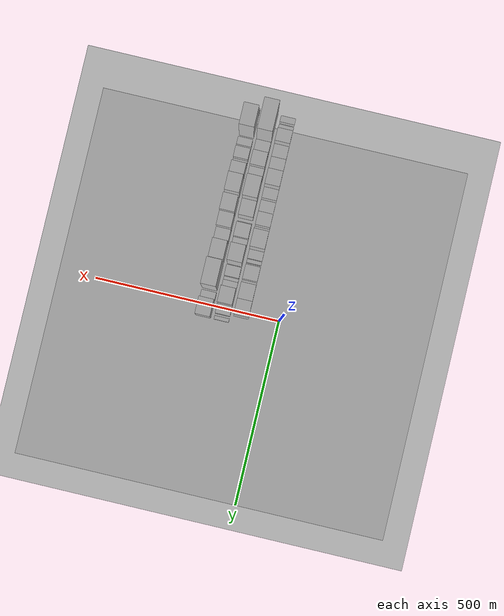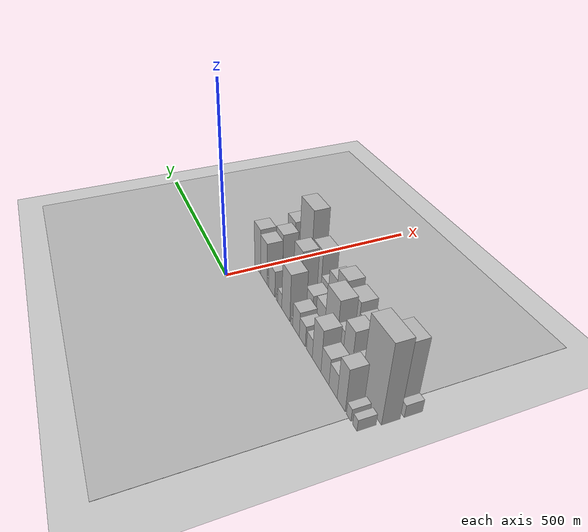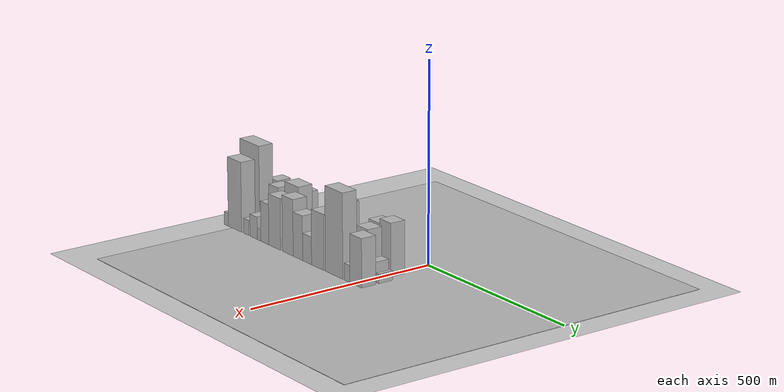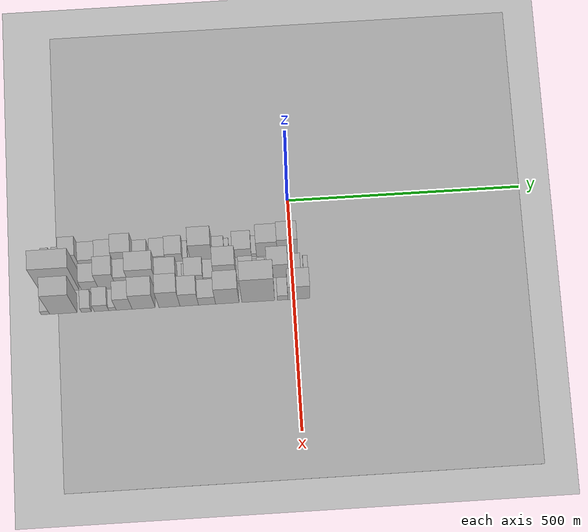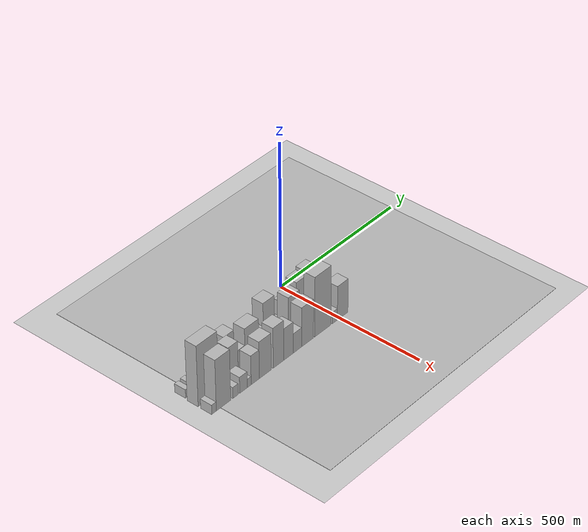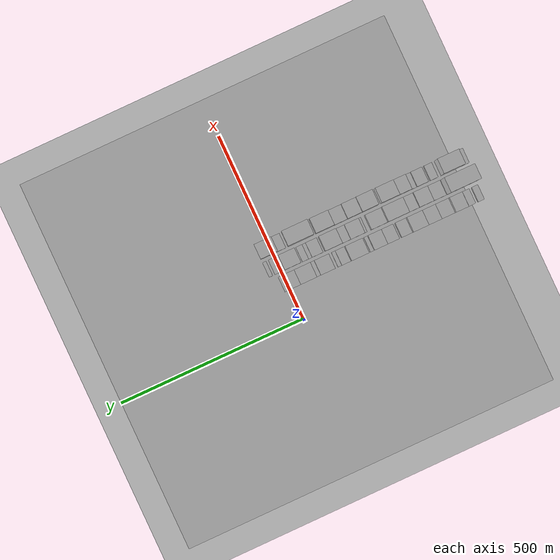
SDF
<sdf version="1.6">
 <world name="default">
  <include><name>ground_plane_1</name><uri>model://HANNAS_ground_plane</uri></include>
  <include>
   <name>ground_plane_2</name>
   <uri>model://HANNAS_ground_plane</uri>
   <pose>100 0 0  0 0 0</pose>
  </include>
  <model name="building_1">
   <static>1</static>
   <pose>100.0000 -523.5699 0 0.000000 0.000000 0.000000</pose>
   <link name="link">
    <pose>0 0 15.00 0 0 0</pose>
    <collision name="collision"><geometry><box><size>40.0000 16.8602 30.0000</size></box></geometry></collision>
    <visual name="visual">
     <cast_shadows>0</cast_shadows>
     <geometry><box><size>40.0000 16.8602 30.0000</size></box></geometry>
     <material>
      <script>
       <uri>model://HANNAS_wall/materials/scripts</uri>
       <uri>model://HANNAS_wall/materials/textures</uri>
       <name>vrc/HANNAS_wall</name>
      </script>
     </material>
    </visual>
   </link>
  </model>
  <model name="building_2">
   <static>1</static>
   <pose>100.0000 -498.9160 0 0.000000 0.000000 0.000000</pose>
   <link name="link">
    <pose>0 0 16.50 0 0 0</pose>
    <collision name="collision"><geometry><box><size>40.0000 18.4478 33.0000</size></box></geometry></collision>
    <visual name="visual">
     <cast_shadows>0</cast_shadows>
     <geometry><box><size>40.0000 18.4478 33.0000</size></box></geometry>
     <material>
      <script>
       <uri>model://HANNAS_wall/materials/scripts</uri>
       <uri>model://HANNAS_wall/materials/textures</uri>
       <name>vrc/HANNAS_wall</name>
      </script>
     </material>
    </visual>
   </link>
  </model>
  <model name="building_3">
   <static>1</static>
   <pose>100.0000 -467.4793 0 0.000000 0.000000 0.000000</pose>
   <link name="link">
    <pose>0 0 57.00 0 0 0</pose>
    <collision name="collision"><geometry><box><size>40.0000 34.4256 114.0000</size></box></geometry></collision>
    <visual name="visual">
     <cast_shadows>0</cast_shadows>
     <geometry><box><size>40.0000 34.4256 114.0000</size></box></geometry>
     <material>
      <script>
       <uri>model://HANNAS_wall/materials/scripts</uri>
       <uri>model://HANNAS_wall/materials/textures</uri>
       <name>vrc/HANNAS_wall</name>
      </script>
     </material>
    </visual>
   </link>
  </model>
  <model name="building_4">
   <static>1</static>
   <pose>100.0000 -432.1780 0 0.000000 0.000000 0.000000</pose>
   <link name="link">
    <pose>0 0 31.50 0 0 0</pose>
    <collision name="collision"><geometry><box><size>40.0000 36.1769 63.0000</size></box></geometry></collision>
    <visual name="visual">
     <cast_shadows>0</cast_shadows>
     <geometry><box><size>40.0000 36.1769 63.0000</size></box></geometry>
     <material>
      <script>
       <uri>model://HANNAS_wall/materials/scripts</uri>
       <uri>model://HANNAS_wall/materials/textures</uri>
       <name>vrc/HANNAS_wall</name>
      </script>
     </material>
    </visual>
   </link>
  </model>
  <model name="building_5">
   <static>1</static>
   <pose>100.0000 -395.4459 0 0.000000 0.000000 0.000000</pose>
   <link name="link">
    <pose>0 0 36.00 0 0 0</pose>
    <collision name="collision"><geometry><box><size>40.0000 37.2872 72.0000</size></box></geometry></collision>
    <visual name="visual">
     <cast_shadows>0</cast_shadows>
     <geometry><box><size>40.0000 37.2872 72.0000</size></box></geometry>
     <material>
      <script>
       <uri>model://HANNAS_wall/materials/scripts</uri>
       <uri>model://HANNAS_wall/materials/textures</uri>
       <name>vrc/HANNAS_wall</name>
      </script>
     </material>
    </visual>
   </link>
  </model>
  <model name="building_6">
   <static>1</static>
   <pose>100.0000 -355.8213 0 0.000000 0.000000 0.000000</pose>
   <link name="link">
    <pose>0 0 57.00 0 0 0</pose>
    <collision name="collision"><geometry><box><size>40.0000 41.9619 114.0000</size></box></geometry></collision>
    <visual name="visual">
     <cast_shadows>0</cast_shadows>
     <geometry><box><size>40.0000 41.9619 114.0000</size></box></geometry>
     <material>
      <script>
       <uri>model://HANNAS_wall/materials/scripts</uri>
       <uri>model://HANNAS_wall/materials/textures</uri>
       <name>vrc/HANNAS_wall</name>
      </script>
     </material>
    </visual>
   </link>
  </model>
  <model name="building_7">
   <static>1</static>
   <pose>100.0000 -319.9900 0 0.000000 0.000000 0.000000</pose>
   <link name="link">
    <pose>0 0 25.50 0 0 0</pose>
    <collision name="collision"><geometry><box><size>40.0000 29.7007 51.0000</size></box></geometry></collision>
    <visual name="visual">
     <cast_shadows>0</cast_shadows>
     <geometry><box><size>40.0000 29.7007 51.0000</size></box></geometry>
     <material>
      <script>
       <uri>model://HANNAS_wall/materials/scripts</uri>
       <uri>model://HANNAS_wall/materials/textures</uri>
       <name>vrc/HANNAS_wall</name>
      </script>
     </material>
    </visual>
   </link>
  </model>
  <model name="building_8">
   <static>1</static>
   <pose>100.0000 -283.0301 0 0.000000 0.000000 0.000000</pose>
   <link name="link">
    <pose>0 0 28.50 0 0 0</pose>
    <collision name="collision"><geometry><box><size>40.0000 32.2191 57.0000</size></box></geometry></collision>
    <visual name="visual">
     <cast_shadows>0</cast_shadows>
     <geometry><box><size>40.0000 32.2191 57.0000</size></box></geometry>
     <material>
      <script>
       <uri>model://HANNAS_wall/materials/scripts</uri>
       <uri>model://HANNAS_wall/materials/textures</uri>
       <name>vrc/HANNAS_wall</name>
      </script>
     </material>
    </visual>
   </link>
  </model>
  <model name="building_9">
   <static>1</static>
   <pose>100.0000 -248.7241 0 0.000000 0.000000 0.000000</pose>
   <link name="link">
    <pose>0 0 34.50 0 0 0</pose>
    <collision name="collision"><geometry><box><size>40.0000 36.3929 69.0000</size></box></geometry></collision>
    <visual name="visual">
     <cast_shadows>0</cast_shadows>
     <geometry><box><size>40.0000 36.3929 69.0000</size></box></geometry>
     <material>
      <script>
       <uri>model://HANNAS_wall/materials/scripts</uri>
       <uri>model://HANNAS_wall/materials/textures</uri>
       <name>vrc/HANNAS_wall</name>
      </script>
     </material>
    </visual>
   </link>
  </model>
  <model name="building_10">
   <static>1</static>
   <pose>100.0000 -225.4781 0 0.000000 0.000000 0.000000</pose>
   <link name="link">
    <pose>0 0 10.50 0 0 0</pose>
    <collision name="collision"><geometry><box><size>40.0000 10.0991 21.0000</size></box></geometry></collision>
    <visual name="visual">
     <cast_shadows>0</cast_shadows>
     <geometry><box><size>40.0000 10.0991 21.0000</size></box></geometry>
     <material>
      <script>
       <uri>model://HANNAS_wall/materials/scripts</uri>
       <uri>model://HANNAS_wall/materials/textures</uri>
       <name>vrc/HANNAS_wall</name>
      </script>
     </material>
    </visual>
   </link>
  </model>
  <model name="building_11">
   <static>1</static>
   <pose>100.0000 -190.6155 0 0.000000 0.000000 0.000000</pose>
   <link name="link">
    <pose>0 0 66.00 0 0 0</pose>
    <collision name="collision"><geometry><box><size>40.0000 47.6261 132.0000</size></box></geometry></collision>
    <visual name="visual">
     <cast_shadows>0</cast_shadows>
     <geometry><box><size>40.0000 47.6261 132.0000</size></box></geometry>
     <material>
      <script>
       <uri>model://HANNAS_wall/materials/scripts</uri>
       <uri>model://HANNAS_wall/materials/textures</uri>
       <name>vrc/HANNAS_wall</name>
      </script>
     </material>
    </visual>
   </link>
  </model>
  <model name="building_12">
   <static>1</static>
   <pose>100.0000 -154.3334 0 0.000000 0.000000 0.000000</pose>
   <link name="link">
    <pose>0 0 21.00 0 0 0</pose>
    <collision name="collision"><geometry><box><size>40.0000 24.9380 42.0000</size></box></geometry></collision>
    <visual name="visual">
     <cast_shadows>0</cast_shadows>
     <geometry><box><size>40.0000 24.9380 42.0000</size></box></geometry>
     <material>
      <script>
       <uri>model://HANNAS_wall/materials/scripts</uri>
       <uri>model://HANNAS_wall/materials/textures</uri>
       <name>vrc/HANNAS_wall</name>
      </script>
     </material>
    </visual>
   </link>
  </model>
  <model name="building_13">
   <static>1</static>
   <pose>100.0000 -136.8258 0 0.000000 0.000000 0.000000</pose>
   <link name="link">
    <pose>0 0 10.50 0 0 0</pose>
    <collision name="collision"><geometry><box><size>40.0000 10.0771 21.0000</size></box></geometry></collision>
    <visual name="visual">
     <cast_shadows>0</cast_shadows>
     <geometry><box><size>40.0000 10.0771 21.0000</size></box></geometry>
     <material>
      <script>
       <uri>model://HANNAS_wall/materials/scripts</uri>
       <uri>model://HANNAS_wall/materials/textures</uri>
       <name>vrc/HANNAS_wall</name>
      </script>
     </material>
    </visual>
   </link>
  </model>
  <model name="building_14">
   <static>1</static>
   <pose>100.0000 -104.0365 0 0.000000 0.000000 0.000000</pose>
   <link name="link">
    <pose>0 0 37.50 0 0 0</pose>
    <collision name="collision"><geometry><box><size>40.0000 39.5016 75.0000</size></box></geometry></collision>
    <visual name="visual">
     <cast_shadows>0</cast_shadows>
     <geometry><box><size>40.0000 39.5016 75.0000</size></box></geometry>
     <material>
      <script>
       <uri>model://HANNAS_wall/materials/scripts</uri>
       <uri>model://HANNAS_wall/materials/textures</uri>
       <name>vrc/HANNAS_wall</name>
      </script>
     </material>
    </visual>
   </link>
  </model>
  <model name="building_15">
   <static>1</static>
   <pose>100.0000 -78.7657 0 0.000000 0.000000 0.000000</pose>
   <link name="link">
    <pose>0 0 13.50 0 0 0</pose>
    <collision name="collision"><geometry><box><size>40.0000 11.0400 27.0000</size></box></geometry></collision>
    <visual name="visual">
     <cast_shadows>0</cast_shadows>
     <geometry><box><size>40.0000 11.0400 27.0000</size></box></geometry>
     <material>
      <script>
       <uri>model://HANNAS_wall/materials/scripts</uri>
       <uri>model://HANNAS_wall/materials/textures</uri>
       <name>vrc/HANNAS_wall</name>
      </script>
     </material>
    </visual>
   </link>
  </model>
  <model name="building_16">
   <static>1</static>
   <pose>100.0000 -51.2539 0 0.000000 0.000000 0.000000</pose>
   <link name="link">
    <pose>0 0 60.00 0 0 0</pose>
    <collision name="collision"><geometry><box><size>40.0000 43.9836 120.0000</size></box></geometry></collision>
    <visual name="visual">
     <cast_shadows>0</cast_shadows>
     <geometry><box><size>40.0000 43.9836 120.0000</size></box></geometry>
     <material>
      <script>
       <uri>model://HANNAS_wall/materials/scripts</uri>
       <uri>model://HANNAS_wall/materials/textures</uri>
       <name>vrc/HANNAS_wall</name>
      </script>
     </material>
    </visual>
   </link>
  </model>
  <model name="building_17">
   <static>1</static>
   <pose>100.0000 -7.7850 0 0.000000 0.000000 0.000000</pose>
   <link name="link">
    <pose>0 0 66.00 0 0 0</pose>
    <collision name="collision"><geometry><box><size>40.0000 42.9540 132.0000</size></box></geometry></collision>
    <visual name="visual">
     <cast_shadows>0</cast_shadows>
     <geometry><box><size>40.0000 42.9540 132.0000</size></box></geometry>
     <material>
      <script>
       <uri>model://HANNAS_wall/materials/scripts</uri>
       <uri>model://HANNAS_wall/materials/textures</uri>
       <name>vrc/HANNAS_wall</name>
      </script>
     </material>
    </visual>
   </link>
  </model>
  <model name="building_34">
   <static>1</static>
   <pose>149.0000 -495.1231 0 0.000000 0.000000 0.000000</pose>
   <link name="link">
    <pose>0 0 105.00 0 0 0</pose>
    <collision name="collision"><geometry><box><size>40.0000 81.7537 210.0000</size></box></geometry></collision>
    <visual name="visual">
     <cast_shadows>0</cast_shadows>
     <geometry><box><size>40.0000 81.7537 210.0000</size></box></geometry>
     <material>
      <script>
       <uri>model://HANNAS_wall/materials/scripts</uri>
       <uri>model://HANNAS_wall/materials/textures</uri>
       <name>vrc/HANNAS_wall</name>
      </script>
     </material>
    </visual>
   </link>
  </model>
  <model name="building_35">
   <static>1</static>
   <pose>149.0000 -431.0517 0 0.000000 0.000000 0.000000</pose>
   <link name="link">
    <pose>0 0 36.00 0 0 0</pose>
    <collision name="collision"><geometry><box><size>40.0000 36.3891 72.0000</size></box></geometry></collision>
    <visual name="visual">
     <cast_shadows>0</cast_shadows>
     <geometry><box><size>40.0000 36.3891 72.0000</size></box></geometry>
     <material>
      <script>
       <uri>model://HANNAS_wall/materials/scripts</uri>
       <uri>model://HANNAS_wall/materials/textures</uri>
       <name>vrc/HANNAS_wall</name>
      </script>
     </material>
    </visual>
   </link>
  </model>
  <model name="building_36">
   <static>1</static>
   <pose>149.0000 -393.5010 0 0.000000 0.000000 0.000000</pose>
   <link name="link">
    <pose>0 0 63.00 0 0 0</pose>
    <collision name="collision"><geometry><box><size>40.0000 38.7124 126.0000</size></box></geometry></collision>
    <visual name="visual">
     <cast_shadows>0</cast_shadows>
     <geometry><box><size>40.0000 38.7124 126.0000</size></box></geometry>
     <material>
      <script>
       <uri>model://HANNAS_wall/materials/scripts</uri>
       <uri>model://HANNAS_wall/materials/textures</uri>
       <name>vrc/HANNAS_wall</name>
      </script>
     </material>
    </visual>
   </link>
  </model>
  <model name="building_37">
   <static>1</static>
   <pose>149.0000 -359.9138 0 0.000000 0.000000 0.000000</pose>
   <link name="link">
    <pose>0 0 46.50 0 0 0</pose>
    <collision name="collision"><geometry><box><size>40.0000 28.4620 93.0000</size></box></geometry></collision>
    <visual name="visual">
     <cast_shadows>0</cast_shadows>
     <geometry><box><size>40.0000 28.4620 93.0000</size></box></geometry>
     <material>
      <script>
       <uri>model://HANNAS_wall/materials/scripts</uri>
       <uri>model://HANNAS_wall/materials/textures</uri>
       <name>vrc/HANNAS_wall</name>
      </script>
     </material>
    </visual>
   </link>
  </model>
  <model name="building_38">
   <static>1</static>
   <pose>149.0000 -317.0915 0 0.000000 0.000000 0.000000</pose>
   <link name="link">
    <pose>0 0 75.00 0 0 0</pose>
    <collision name="collision"><geometry><box><size>40.0000 57.1827 150.0000</size></box></geometry></collision>
    <visual name="visual">
     <cast_shadows>0</cast_shadows>
     <geometry><box><size>40.0000 57.1827 150.0000</size></box></geometry>
     <material>
      <script>
       <uri>model://HANNAS_wall/materials/scripts</uri>
       <uri>model://HANNAS_wall/materials/textures</uri>
       <name>vrc/HANNAS_wall</name>
      </script>
     </material>
    </visual>
   </link>
  </model>
  <model name="building_39">
   <static>1</static>
   <pose>149.0000 -266.5618 0 0.000000 0.000000 0.000000</pose>
   <link name="link">
    <pose>0 0 42.00 0 0 0</pose>
    <collision name="collision"><geometry><box><size>40.0000 43.8767 84.0000</size></box></geometry></collision>
    <visual name="visual">
     <cast_shadows>0</cast_shadows>
     <geometry><box><size>40.0000 43.8767 84.0000</size></box></geometry>
     <material>
      <script>
       <uri>model://HANNAS_wall/materials/scripts</uri>
       <uri>model://HANNAS_wall/materials/textures</uri>
       <name>vrc/HANNAS_wall</name>
      </script>
     </material>
    </visual>
   </link>
  </model>
  <model name="building_40">
   <static>1</static>
   <pose>149.0000 -231.0600 0 0.000000 0.000000 0.000000</pose>
   <link name="link">
    <pose>0 0 7.50 0 0 0</pose>
    <collision name="collision"><geometry><box><size>40.0000 7.1269 15.0000</size></box></geometry></collision>
    <visual name="visual">
     <cast_shadows>0</cast_shadows>
     <geometry><box><size>40.0000 7.1269 15.0000</size></box></geometry>
     <material>
      <script>
       <uri>model://HANNAS_wall/materials/scripts</uri>
       <uri>model://HANNAS_wall/materials/textures</uri>
       <name>vrc/HANNAS_wall</name>
      </script>
     </material>
    </visual>
   </link>
  </model>
  <model name="building_41">
   <static>1</static>
   <pose>149.0000 -208.1392 0 0.000000 0.000000 0.000000</pose>
   <link name="link">
    <pose>0 0 34.50 0 0 0</pose>
    <collision name="collision"><geometry><box><size>40.0000 38.7147 69.0000</size></box></geometry></collision>
    <visual name="visual">
     <cast_shadows>0</cast_shadows>
     <geometry><box><size>40.0000 38.7147 69.0000</size></box></geometry>
     <material>
      <script>
       <uri>model://HANNAS_wall/materials/scripts</uri>
       <uri>model://HANNAS_wall/materials/textures</uri>
       <name>vrc/HANNAS_wall</name>
      </script>
     </material>
    </visual>
   </link>
  </model>
  <model name="building_42">
   <static>1</static>
   <pose>149.0000 -176.8376 0 0.000000 0.000000 0.000000</pose>
   <link name="link">
    <pose>0 0 21.00 0 0 0</pose>
    <collision name="collision"><geometry><box><size>40.0000 23.8886 42.0000</size></box></geometry></collision>
    <visual name="visual">
     <cast_shadows>0</cast_shadows>
     <geometry><box><size>40.0000 23.8886 42.0000</size></box></geometry>
     <material>
      <script>
       <uri>model://HANNAS_wall/materials/scripts</uri>
       <uri>model://HANNAS_wall/materials/textures</uri>
       <name>vrc/HANNAS_wall</name>
      </script>
     </material>
    </visual>
   </link>
  </model>
  <model name="building_43">
   <static>1</static>
   <pose>149.0000 -141.6189 0 0.000000 0.000000 0.000000</pose>
   <link name="link">
    <pose>0 0 73.50 0 0 0</pose>
    <collision name="collision"><geometry><box><size>40.0000 46.5488 147.0000</size></box></geometry></collision>
    <visual name="visual">
     <cast_shadows>0</cast_shadows>
     <geometry><box><size>40.0000 46.5488 147.0000</size></box></geometry>
     <material>
      <script>
       <uri>model://HANNAS_wall/materials/scripts</uri>
       <uri>model://HANNAS_wall/materials/textures</uri>
       <name>vrc/HANNAS_wall</name>
      </script>
     </material>
    </visual>
   </link>
  </model>
  <model name="building_44">
   <static>1</static>
   <pose>149.0000 -98.3548 0 0.000000 0.000000 0.000000</pose>
   <link name="link">
    <pose>0 0 25.50 0 0 0</pose>
    <collision name="collision"><geometry><box><size>40.0000 29.9796 51.0000</size></box></geometry></collision>
    <visual name="visual">
     <cast_shadows>0</cast_shadows>
     <geometry><box><size>40.0000 29.9796 51.0000</size></box></geometry>
     <material>
      <script>
       <uri>model://HANNAS_wall/materials/scripts</uri>
       <uri>model://HANNAS_wall/materials/textures</uri>
       <name>vrc/HANNAS_wall</name>
      </script>
     </material>
    </visual>
   </link>
  </model>
  <model name="building_45">
   <static>1</static>
   <pose>149.0000 -78.6305 0 0.000000 0.000000 0.000000</pose>
   <link name="link">
    <pose>0 0 10.50 0 0 0</pose>
    <collision name="collision"><geometry><box><size>40.0000 9.4690 21.0000</size></box></geometry></collision>
    <visual name="visual">
     <cast_shadows>0</cast_shadows>
     <geometry><box><size>40.0000 9.4690 21.0000</size></box></geometry>
     <material>
      <script>
       <uri>model://HANNAS_wall/materials/scripts</uri>
       <uri>model://HANNAS_wall/materials/textures</uri>
       <name>vrc/HANNAS_wall</name>
      </script>
     </material>
    </visual>
   </link>
  </model>
  <model name="building_46">
   <static>1</static>
   <pose>149.0000 -65.3582 0 0.000000 0.000000 0.000000</pose>
   <link name="link">
    <pose>0 0 15.00 0 0 0</pose>
    <collision name="collision"><geometry><box><size>40.0000 17.0755 30.0000</size></box></geometry></collision>
    <visual name="visual">
     <cast_shadows>0</cast_shadows>
     <geometry><box><size>40.0000 17.0755 30.0000</size></box></geometry>
     <material>
      <script>
       <uri>model://HANNAS_wall/materials/scripts</uri>
       <uri>model://HANNAS_wall/materials/textures</uri>
       <name>vrc/HANNAS_wall</name>
      </script>
     </material>
    </visual>
   </link>
  </model>
  <model name="building_47">
   <static>1</static>
   <pose>149.0000 -30.7471 0 0.000000 0.000000 0.000000</pose>
   <link name="link">
    <pose>0 0 60.00 0 0 0</pose>
    <collision name="collision"><geometry><box><size>40.0000 44.1467 120.0000</size></box></geometry></collision>
    <visual name="visual">
     <cast_shadows>0</cast_shadows>
     <geometry><box><size>40.0000 44.1467 120.0000</size></box></geometry>
     <material>
      <script>
       <uri>model://HANNAS_wall/materials/scripts</uri>
       <uri>model://HANNAS_wall/materials/textures</uri>
       <name>vrc/HANNAS_wall</name>
      </script>
     </material>
    </visual>
   </link>
  </model>
  <model name="building_48">
   <static>1</static>
   <pose>149.0000 4.8125 0 0.000000 0.000000 0.000000</pose>
   <link name="link">
    <pose>0 0 24.00 0 0 0</pose>
    <collision name="collision"><geometry><box><size>40.0000 26.9725 48.0000</size></box></geometry></collision>
    <visual name="visual">
     <cast_shadows>0</cast_shadows>
     <geometry><box><size>40.0000 26.9725 48.0000</size></box></geometry>
     <material>
      <script>
       <uri>model://HANNAS_wall/materials/scripts</uri>
       <uri>model://HANNAS_wall/materials/textures</uri>
       <name>vrc/HANNAS_wall</name>
      </script>
     </material>
    </visual>
   </link>
  </model>
  <model name="building_49">
   <static>1</static>
   <pose>149.0000 29.1907 0 0.000000 0.000000 0.000000</pose>
   <link name="link">
    <pose>0 0 12.00 0 0 0</pose>
    <collision name="collision"><geometry><box><size>40.0000 9.7840 24.0000</size></box></geometry></collision>
    <visual name="visual">
     <cast_shadows>0</cast_shadows>
     <geometry><box><size>40.0000 9.7840 24.0000</size></box></geometry>
     <material>
      <script>
       <uri>model://HANNAS_wall/materials/scripts</uri>
       <uri>model://HANNAS_wall/materials/textures</uri>
       <name>vrc/HANNAS_wall</name>
      </script>
     </material>
    </visual>
   </link>
  </model>
  <model name="building_69">
   <static>1</static>
   <pose>198.0000 -526.9439 0 0.000000 0.000000 0.000000</pose>
   <link name="link">
    <pose>0 0 16.50 0 0 0</pose>
    <collision name="collision"><geometry><box><size>40.0000 18.1123 33.0000</size></box></geometry></collision>
    <visual name="visual">
     <cast_shadows>0</cast_shadows>
     <geometry><box><size>40.0000 18.1123 33.0000</size></box></geometry>
     <material>
      <script>
       <uri>model://HANNAS_wall/materials/scripts</uri>
       <uri>model://HANNAS_wall/materials/textures</uri>
       <name>vrc/HANNAS_wall</name>
      </script>
     </material>
    </visual>
   </link>
  </model>
  <model name="building_70">
   <static>1</static>
   <pose>198.0000 -488.8800 0 0.000000 0.000000 0.000000</pose>
   <link name="link">
    <pose>0 0 88.50 0 0 0</pose>
    <collision name="collision"><geometry><box><size>40.0000 58.0154 177.0000</size></box></geometry></collision>
    <visual name="visual">
     <cast_shadows>0</cast_shadows>
     <geometry><box><size>40.0000 58.0154 177.0000</size></box></geometry>
     <material>
      <script>
       <uri>model://HANNAS_wall/materials/scripts</uri>
       <uri>model://HANNAS_wall/materials/textures</uri>
       <name>vrc/HANNAS_wall</name>
      </script>
     </material>
    </visual>
   </link>
  </model>
  <model name="building_71">
   <static>1</static>
   <pose>198.0000 -440.2058 0 0.000000 0.000000 0.000000</pose>
   <link name="link">
    <pose>0 0 19.50 0 0 0</pose>
    <collision name="collision"><geometry><box><size>40.0000 21.3331 39.0000</size></box></geometry></collision>
    <visual name="visual">
     <cast_shadows>0</cast_shadows>
     <geometry><box><size>40.0000 21.3331 39.0000</size></box></geometry>
     <material>
      <script>
       <uri>model://HANNAS_wall/materials/scripts</uri>
       <uri>model://HANNAS_wall/materials/textures</uri>
       <name>vrc/HANNAS_wall</name>
      </script>
     </material>
    </visual>
   </link>
  </model>
  <model name="building_72">
   <static>1</static>
   <pose>198.0000 -408.0552 0 0.000000 0.000000 0.000000</pose>
   <link name="link">
    <pose>0 0 28.50 0 0 0</pose>
    <collision name="collision"><geometry><box><size>40.0000 30.9680 57.0000</size></box></geometry></collision>
    <visual name="visual">
     <cast_shadows>0</cast_shadows>
     <geometry><box><size>40.0000 30.9680 57.0000</size></box></geometry>
     <material>
      <script>
       <uri>model://HANNAS_wall/materials/scripts</uri>
       <uri>model://HANNAS_wall/materials/textures</uri>
       <name>vrc/HANNAS_wall</name>
      </script>
     </material>
    </visual>
   </link>
  </model>
  <model name="building_73">
   <static>1</static>
   <pose>198.0000 -384.7966 0 0.000000 0.000000 0.000000</pose>
   <link name="link">
    <pose>0 0 15.00 0 0 0</pose>
    <collision name="collision"><geometry><box><size>40.0000 15.5492 30.0000</size></box></geometry></collision>
    <visual name="visual">
     <cast_shadows>0</cast_shadows>
     <geometry><box><size>40.0000 15.5492 30.0000</size></box></geometry>
     <material>
      <script>
       <uri>model://HANNAS_wall/materials/scripts</uri>
       <uri>model://HANNAS_wall/materials/textures</uri>
       <name>vrc/HANNAS_wall</name>
      </script>
     </material>
    </visual>
   </link>
  </model>
  <model name="building_74">
   <static>1</static>
   <pose>198.0000 -360.1013 0 0.000000 0.000000 0.000000</pose>
   <link name="link">
    <pose>0 0 51.00 0 0 0</pose>
    <collision name="collision"><geometry><box><size>40.0000 33.8413 102.0000</size></box></geometry></collision>
    <visual name="visual">
     <cast_shadows>0</cast_shadows>
     <geometry><box><size>40.0000 33.8413 102.0000</size></box></geometry>
     <material>
      <script>
       <uri>model://HANNAS_wall/materials/scripts</uri>
       <uri>model://HANNAS_wall/materials/textures</uri>
       <name>vrc/HANNAS_wall</name>
      </script>
     </material>
    </visual>
   </link>
  </model>
  <model name="building_75">
   <static>1</static>
   <pose>198.0000 -318.6009 0 0.000000 0.000000 0.000000</pose>
   <link name="link">
    <pose>0 0 64.50 0 0 0</pose>
    <collision name="collision"><geometry><box><size>40.0000 49.1596 129.0000</size></box></geometry></collision>
    <visual name="visual">
     <cast_shadows>0</cast_shadows>
     <geometry><box><size>40.0000 49.1596 129.0000</size></box></geometry>
     <material>
      <script>
       <uri>model://HANNAS_wall/materials/scripts</uri>
       <uri>model://HANNAS_wall/materials/textures</uri>
       <name>vrc/HANNAS_wall</name>
      </script>
     </material>
    </visual>
   </link>
  </model>
  <model name="building_76">
   <static>1</static>
   <pose>198.0000 -263.7346 0 0.000000 0.000000 0.000000</pose>
   <link name="link">
    <pose>0 0 70.50 0 0 0</pose>
    <collision name="collision"><geometry><box><size>40.0000 44.5731 141.0000</size></box></geometry></collision>
    <visual name="visual">
     <cast_shadows>0</cast_shadows>
     <geometry><box><size>40.0000 44.5731 141.0000</size></box></geometry>
     <material>
      <script>
       <uri>model://HANNAS_wall/materials/scripts</uri>
       <uri>model://HANNAS_wall/materials/textures</uri>
       <name>vrc/HANNAS_wall</name>
      </script>
     </material>
    </visual>
   </link>
  </model>
  <model name="building_77">
   <static>1</static>
   <pose>198.0000 -221.8352 0 0.000000 0.000000 0.000000</pose>
   <link name="link">
    <pose>0 0 55.50 0 0 0</pose>
    <collision name="collision"><geometry><box><size>40.0000 39.2256 111.0000</size></box></geometry></collision>
    <visual name="visual">
     <cast_shadows>0</cast_shadows>
     <geometry><box><size>40.0000 39.2256 111.0000</size></box></geometry>
     <material>
      <script>
       <uri>model://HANNAS_wall/materials/scripts</uri>
       <uri>model://HANNAS_wall/materials/textures</uri>
       <name>vrc/HANNAS_wall</name>
      </script>
     </material>
    </visual>
   </link>
  </model>
  <model name="building_78">
   <static>1</static>
   <pose>198.0000 -184.1178 0 0.000000 0.000000 0.000000</pose>
   <link name="link">
    <pose>0 0 34.50 0 0 0</pose>
    <collision name="collision"><geometry><box><size>40.0000 36.2093 69.0000</size></box></geometry></collision>
    <visual name="visual">
     <cast_shadows>0</cast_shadows>
     <geometry><box><size>40.0000 36.2093 69.0000</size></box></geometry>
     <material>
      <script>
       <uri>model://HANNAS_wall/materials/scripts</uri>
       <uri>model://HANNAS_wall/materials/textures</uri>
       <name>vrc/HANNAS_wall</name>
      </script>
     </material>
    </visual>
   </link>
  </model>
  <model name="building_79">
   <static>1</static>
   <pose>198.0000 -140.9857 0 0.000000 0.000000 0.000000</pose>
   <link name="link">
    <pose>0 0 69.00 0 0 0</pose>
    <collision name="collision"><geometry><box><size>40.0000 50.0550 138.0000</size></box></geometry></collision>
    <visual name="visual">
     <cast_shadows>0</cast_shadows>
     <geometry><box><size>40.0000 50.0550 138.0000</size></box></geometry>
     <material>
      <script>
       <uri>model://HANNAS_wall/materials/scripts</uri>
       <uri>model://HANNAS_wall/materials/textures</uri>
       <name>vrc/HANNAS_wall</name>
      </script>
     </material>
    </visual>
   </link>
  </model>
  <model name="building_80">
   <static>1</static>
   <pose>198.0000 -75.1956 0 0.000000 0.000000 0.000000</pose>
   <link name="link">
    <pose>0 0 105.00 0 0 0</pose>
    <collision name="collision"><geometry><box><size>40.0000 69.5251 210.0000</size></box></geometry></collision>
    <visual name="visual">
     <cast_shadows>0</cast_shadows>
     <geometry><box><size>40.0000 69.5251 210.0000</size></box></geometry>
     <material>
      <script>
       <uri>model://HANNAS_wall/materials/scripts</uri>
       <uri>model://HANNAS_wall/materials/textures</uri>
       <name>vrc/HANNAS_wall</name>
      </script>
     </material>
    </visual>
   </link>
  </model>
  <model name="building_81">
   <static>1</static>
   <pose>198.0000 -23.4615 0 0.000000 0.000000 0.000000</pose>
   <link name="link">
    <pose>0 0 21.00 0 0 0</pose>
    <collision name="collision"><geometry><box><size>40.0000 21.9432 42.0000</size></box></geometry></collision>
    <visual name="visual">
     <cast_shadows>0</cast_shadows>
     <geometry><box><size>40.0000 21.9432 42.0000</size></box></geometry>
     <material>
      <script>
       <uri>model://HANNAS_wall/materials/scripts</uri>
       <uri>model://HANNAS_wall/materials/textures</uri>
       <name>vrc/HANNAS_wall</name>
      </script>
     </material>
    </visual>
   </link>
  </model>
  <model name="building_82">
   <static>1</static>
   <pose>198.0000 10.7537 0 0.000000 0.000000 0.000000</pose>
   <link name="link">
    <pose>0 0 60.00 0 0 0</pose>
    <collision name="collision"><geometry><box><size>40.0000 46.4870 120.0000</size></box></geometry></collision>
    <visual name="visual">
     <cast_shadows>0</cast_shadows>
     <geometry><box><size>40.0000 46.4870 120.0000</size></box></geometry>
     <material>
      <script>
       <uri>model://HANNAS_wall/materials/scripts</uri>
       <uri>model://HANNAS_wall/materials/textures</uri>
       <name>vrc/HANNAS_wall</name>
      </script>
     </material>
    </visual>
   </link>
  </model>
 </world>
</sdf>
